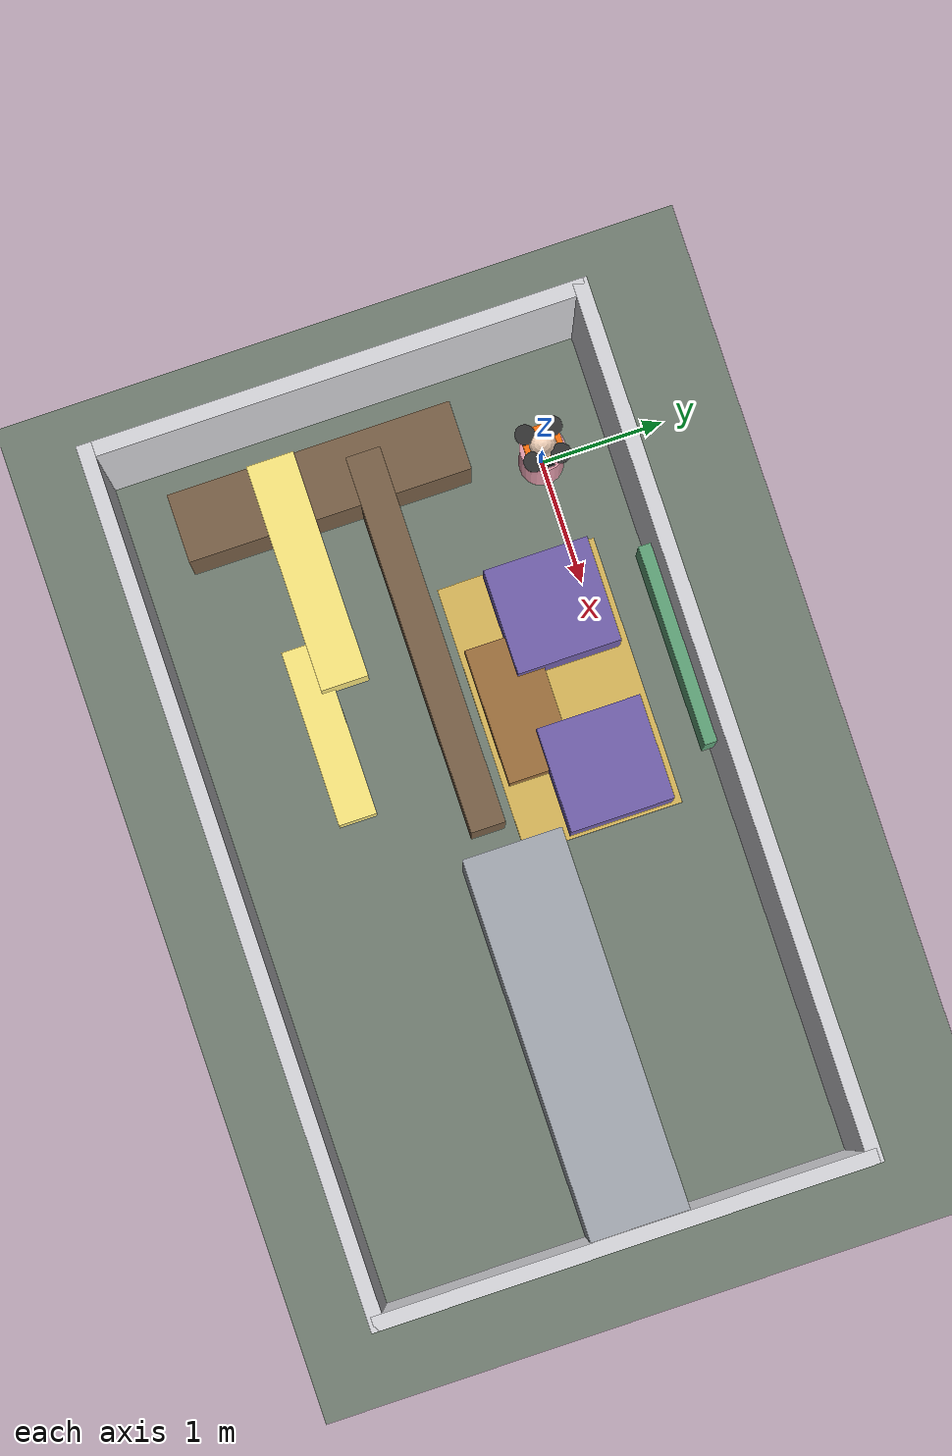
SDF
<?xml version="1.0" ?>
<sdf version="1.7">
  <world name="frl_apartment_0">
    <physics name="1ms" type="ignored">
      <max_step_size>0.001</max_step_size>
      <real_time_factor>1.0</real_time_factor>
    </physics>

    <plugin filename="gz-sim-physics-system" name="gz::sim::systems::Physics"/>
    <plugin filename="gz-sim-user-commands-system" name="gz::sim::systems::UserCommands"/>
    <plugin filename="gz-sim-scene-broadcaster-system" name="gz::sim::systems::SceneBroadcaster"/>

    <light type="directional" name="sun">
      <cast_shadows>true</cast_shadows>
      <pose>2.52 -1.36 10.95 0 0 0</pose>
      <diffuse>0.85 0.85 0.85 1</diffuse>
      <specular>0.2 0.2 0.2 1</specular>
      <direction>-0.5 0.1 -0.9</direction>
    </light>
    <light type="point" name="room_fill">
      <pose>2.52 -1.36 2.36 0 0 0</pose>
      <diffuse>0.35 0.35 0.38 1</diffuse>
      <attenuation><range>15</range></attenuation>
    </light>

    <model name="ground_plane"><static>true</static>
      <link name="link">
        <collision name="col">
          <geometry><plane><normal>0 0 1</normal><size>40 40</size></plane></geometry>
        </collision>
        <visual name="vis">
          <geometry><plane><normal>0 0 1</normal><size>40 40</size></plane></geometry>
          <material><ambient>0.45 0.5 0.45 1</ambient><diffuse>0.45 0.5 0.45 1</diffuse></material>
        </visual>
      </link>
    </model>

    <model name="room_floor"><static>true</static><pose>2.5200 -1.3600 -0.0400 0.0000 0.0000 0.0000</pose>
      <link name="link">

        <visual name="vis">
          <geometry><box><size>7.0000 4.0400 0.0200</size></box></geometry>
          <material>
            <ambient>0.62 0.50 0.38 1.0</ambient><diffuse>0.72 0.59 0.45 1.0</diffuse>
          </material>
        </visual>
      </link>
    </model>
    <model name="wall_west"><static>true</static><pose>-0.9200 -1.3600 1.4300 0.0000 0.0000 0.0000</pose>
      <link name="link">
        <collision name="col"><geometry><box><size>0.1200 3.9800 2.9000</size></box></geometry></collision>
        <visual name="vis">
          <geometry><box><size>0.1200 3.9800 2.9000</size></box></geometry>
          <material>
            <ambient>0.80 0.80 0.82 1.0</ambient><diffuse>0.85 0.85 0.87 1.0</diffuse>
          </material>
        </visual>
      </link>
    </model>
    <model name="wall_east"><static>true</static><pose>5.9600 -1.3600 1.4300 0.0000 0.0000 0.0000</pose>
      <link name="link">
        <collision name="col"><geometry><box><size>0.1200 3.9800 2.9000</size></box></geometry></collision>
        <visual name="vis">
          <geometry><box><size>0.1200 3.9800 2.9000</size></box></geometry>
          <material>
            <ambient>0.80 0.80 0.82 1.0</ambient><diffuse>0.85 0.85 0.87 1.0</diffuse>
          </material>
        </visual>
      </link>
    </model>
    <model name="wall_south"><static>true</static><pose>2.5200 -3.3200 1.4300 0.0000 0.0000 0.0000</pose>
      <link name="link">
        <collision name="col"><geometry><box><size>7.0000 0.1200 2.9000</size></box></geometry></collision>
        <visual name="vis">
          <geometry><box><size>7.0000 0.1200 2.9000</size></box></geometry>
          <material>
            <ambient>0.80 0.80 0.82 1.0</ambient><diffuse>0.85 0.85 0.87 1.0</diffuse>
          </material>
        </visual>
      </link>
    </model>
    <model name="wall_north"><static>true</static><pose>2.5200 0.6000 1.4300 0.0000 0.0000 0.0000</pose>
      <link name="link">
        <collision name="col"><geometry><box><size>7.0000 0.1200 2.9000</size></box></geometry></collision>
        <visual name="vis">
          <geometry><box><size>7.0000 0.1200 2.9000</size></box></geometry>
          <material>
            <ambient>0.80 0.80 0.82 1.0</ambient><diffuse>0.85 0.85 0.87 1.0</diffuse>
          </material>
        </visual>
      </link>
    </model>
    <model name="stairs_01"><static>true</static><pose>4.4000 -1.2200 1.3500 0.0000 0.0000 0.0000</pose>
      <link name="link">
        <collision name="col"><geometry><box><size>3.0500 0.7900 2.7000</size></box></geometry></collision>
        <visual name="vis">
          <geometry><box><size>3.0500 0.7900 2.7000</size></box></geometry>
          <material>
            <ambient>0.55 0.57 0.60 1.0</ambient><diffuse>0.65 0.67 0.70 1.0</diffuse>
          </material>
        </visual>
      </link>
    </model>
    <model name="console_01"><static>true</static><pose>1.1200 -1.3300 0.6300 0.0000 0.0000 0.0000</pose>
      <link name="link">
        <collision name="col"><geometry><box><size>3.0600 0.2800 1.2500</size></box></geometry></collision>
        <visual name="vis">
          <geometry><box><size>3.0600 0.2800 1.2500</size></box></geometry>
          <material>
            <ambient>0.38 0.30 0.22 1.0</ambient><diffuse>0.48 0.38 0.28 1.0</diffuse>
          </material>
        </visual>
      </link>
    </model>
    <model name="cabinet_01"><static>true</static><pose>-0.3000 -1.7200 0.6200 0.0000 0.0000 0.0000</pose>
      <link name="link">
        <collision name="col"><geometry><box><size>0.5500 2.3000 1.2300</size></box></geometry></collision>
        <visual name="vis">
          <geometry><box><size>0.5500 2.3000 1.2300</size></box></geometry>
          <material>
            <ambient>0.38 0.30 0.22 1.0</ambient><diffuse>0.48 0.38 0.28 1.0</diffuse>
          </material>
        </visual>
      </link>
    </model>
    <model name="rug_01"><static>true</static><pose>1.8000 -0.4500 0.0200 0.0000 0.0000 0.0000</pose>
      <link name="link">

        <visual name="vis">
          <geometry><box><size>2.2000 1.3000 0.0500</size></box></geometry>
          <material>
            <ambient>0.75 0.62 0.25 1.0</ambient><diffuse>0.85 0.72 0.35 1.0</diffuse>
          </material>
        </visual>
      </link>
    </model>
    <model name="armchair_01"><static>true</static><pose>1.1500 -0.3000 0.4000 0.0000 0.0000 0.0000</pose>
      <link name="link">
        <collision name="col"><geometry><box><size>0.8500 0.8500 0.8000</size></box></geometry></collision>
        <visual name="vis">
          <geometry><box><size>0.8500 0.8500 0.8000</size></box></geometry>
          <material>
            <ambient>0.36 0.30 0.55 1.0</ambient><diffuse>0.45 0.38 0.68 1.0</diffuse>
          </material>
        </visual>
      </link>
    </model>
    <model name="armchair_02"><static>true</static><pose>2.4500 -0.3000 0.4000 0.0000 0.0000 0.0000</pose>
      <link name="link">
        <collision name="col"><geometry><box><size>0.8500 0.8500 0.8000</size></box></geometry></collision>
        <visual name="vis">
          <geometry><box><size>0.8500 0.8500 0.8000</size></box></geometry>
          <material>
            <ambient>0.36 0.30 0.55 1.0</ambient><diffuse>0.45 0.38 0.68 1.0</diffuse>
          </material>
        </visual>
      </link>
    </model>
    <model name="coffee_table_01"><static>true</static><pose>1.8000 -0.7800 0.2400 0.0000 0.0000 0.0000</pose>
      <link name="link">
        <collision name="col"><geometry><box><size>1.1000 0.5500 0.4800</size></box></geometry></collision>
        <visual name="vis">
          <geometry><box><size>1.1000 0.5500 0.4800</size></box></geometry>
          <material>
            <ambient>0.52 0.36 0.18 1.0</ambient><diffuse>0.62 0.44 0.24 1.0</diffuse>
          </material>
        </visual>
      </link>
    </model>
    <model name="tv_01"><static>true</static><pose>1.8000 0.4800 1.3500 0.0000 0.0000 0.0000</pose>
      <link name="link">
        <collision name="col"><geometry><box><size>1.6000 0.1000 0.9000</size></box></geometry></collision>
        <visual name="vis">
          <geometry><box><size>1.6000 0.1000 0.9000</size></box></geometry>
          <material>
            <ambient>0.30 0.55 0.40 1.0</ambient><diffuse>0.38 0.65 0.48 1.0</diffuse>
          </material>
        </visual>
      </link>
    </model>
    <model name="hanging_lamp_01"><static>true</static><pose>0.4700 -2.0300 2.7200 0.0000 0.0000 0.0000</pose>
      <link name="link">
        <collision name="col"><geometry><box><size>1.7700 0.3700 0.6000</size></box></geometry></collision>
        <visual name="vis">
          <geometry><box><size>1.7700 0.3700 0.6000</size></box></geometry>
          <material>
            <ambient>0.95 0.85 0.35 1.0</ambient><diffuse>1.0 0.92 0.5 1.0</diffuse>
          </material>
        </visual>
      </link>
    </model>
    <model name="hanging_lamp_02"><static>true</static><pose>1.6500 -2.2600 2.4200 0.0000 0.0000 0.0000</pose>
      <link name="link">
        <collision name="col"><geometry><box><size>1.3700 0.3000 0.4500</size></box></geometry></collision>
        <visual name="vis">
          <geometry><box><size>1.3700 0.3000 0.4500</size></box></geometry>
          <material>
            <ambient>0.95 0.85 0.35 1.0</ambient><diffuse>1.0 0.92 0.5 1.0</diffuse>
          </material>
        </visual>
      </link>
    </model>
    <model name="wall_art_01"><static>true</static><pose>-0.1700 -1.3600 0.4500 0.0000 0.0000 0.0000</pose>
      <link name="link">
        <collision name="col"><geometry><box><size>0.5000 0.0900 0.4100</size></box></geometry></collision>
        <visual name="vis">
          <geometry><box><size>0.5000 0.0900 0.4100</size></box></geometry>
          <material>
            <ambient>0.30 0.55 0.40 1.0</ambient><diffuse>0.38 0.65 0.48 1.0</diffuse>
          </material>
        </visual>
      </link>
    </model>
    <model name="camera_drone"><static>true</static><pose>0 0 1.5 0 0 0</pose>
      <link name="body">
        <visual name="chassis">
          <geometry><box><size>0.30 0.30 0.08</size></box></geometry>
          <material><ambient>1.0 0.45 0.05 1</ambient><diffuse>1.0 0.45 0.05 1</diffuse></material>
        </visual>
        <visual name="rotor_0"><pose>0.11 0.11 0.07 0 0 0</pose>
          <geometry><cylinder><radius>0.08</radius><length>0.02</length></cylinder></geometry>
          <material><ambient>0.2 0.2 0.2 1</ambient><diffuse>0.2 0.2 0.2 1</diffuse></material>
        </visual>
        <visual name="rotor_1"><pose>-0.11 0.11 0.07 0 0 0</pose>
          <geometry><cylinder><radius>0.08</radius><length>0.02</length></cylinder></geometry>
          <material><ambient>0.2 0.2 0.2 1</ambient><diffuse>0.2 0.2 0.2 1</diffuse></material>
        </visual>
        <visual name="rotor_2"><pose>0.11 -0.11 0.07 0 0 0</pose>
          <geometry><cylinder><radius>0.08</radius><length>0.02</length></cylinder></geometry>
          <material><ambient>0.2 0.2 0.2 1</ambient><diffuse>0.2 0.2 0.2 1</diffuse></material>
        </visual>
        <visual name="rotor_3"><pose>-0.11 -0.11 0.07 0 0 0</pose>
          <geometry><cylinder><radius>0.08</radius><length>0.02</length></cylinder></geometry>
          <material><ambient>0.2 0.2 0.2 1</ambient><diffuse>0.2 0.2 0.2 1</diffuse></material>
        </visual>
        <visual name="camera"><pose>0.14 0 0 0 0 0</pose>
          <geometry><box><size>0.08 0.08 0.06</size></box></geometry>
          <material><ambient>0.05 0.05 0.05 1</ambient><diffuse>0.05 0.05 0.05 1</diffuse></material>
        </visual>
        <collision name="col"><geometry><box><size>0.30 0.30 0.08</size></box></geometry></collision>
      </link>
    </model>
    <model name="subject_01"><static>true</static><pose>0 0 0 0 0 0</pose>
      <link name="link">
        <visual name="body"><pose>0 0 0.610 0 0 0</pose>
          <geometry><cylinder><radius>0.18</radius><length>1.221</length></cylinder></geometry>
          <material><ambient>0.85 0.55 0.60 1</ambient><diffuse>0.9 0.62 0.68 1</diffuse></material>
        </visual>
        <visual name="head"><pose>0 0 1.518 0 0 0</pose>
          <geometry><sphere><radius>0.11</radius></sphere></geometry>
          <material><ambient>0.95 0.80 0.70 1</ambient><diffuse>0.98 0.85 0.75 1</diffuse></material>
        </visual>
      </link>
    </model>
  </world>
</sdf>
